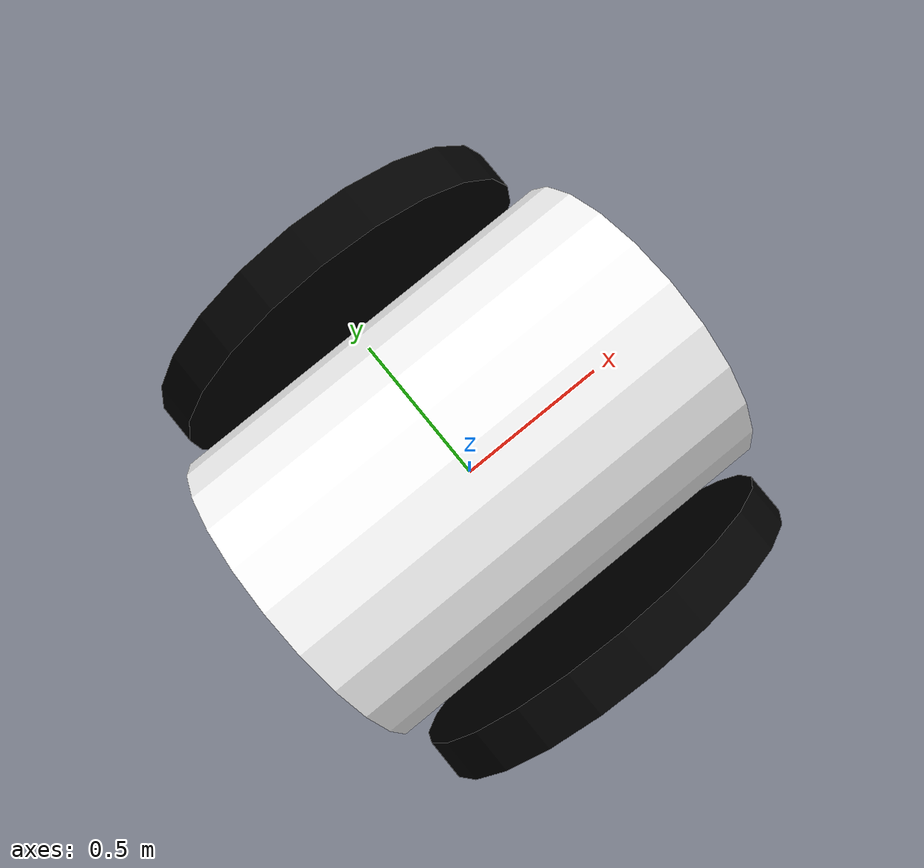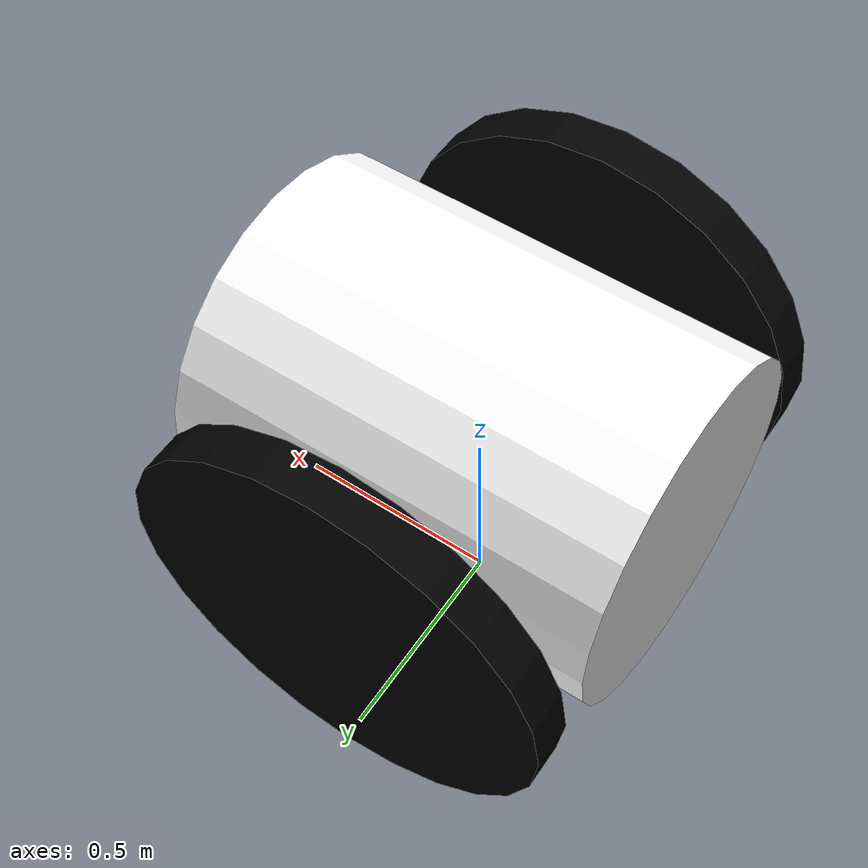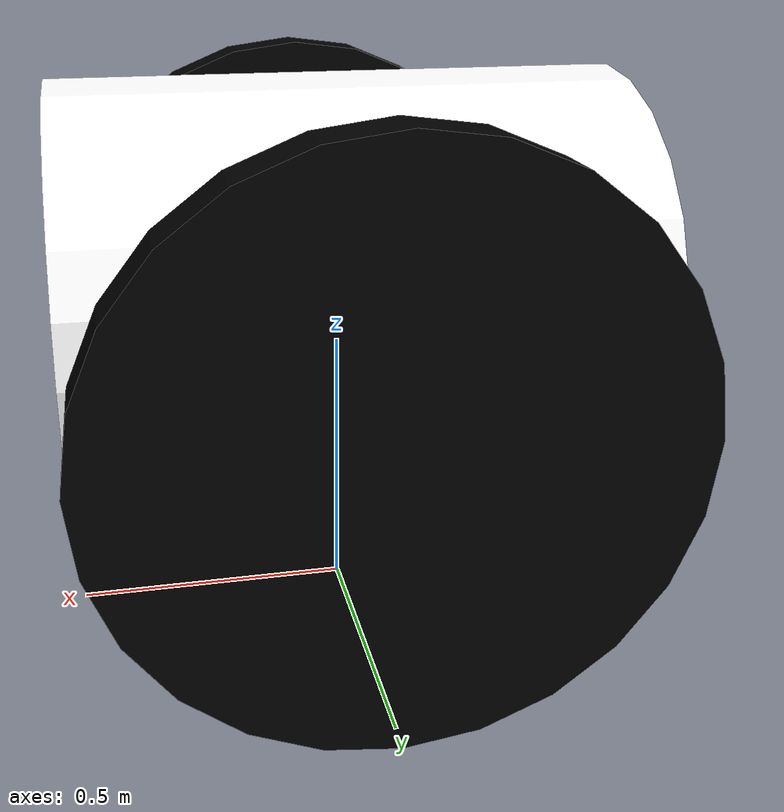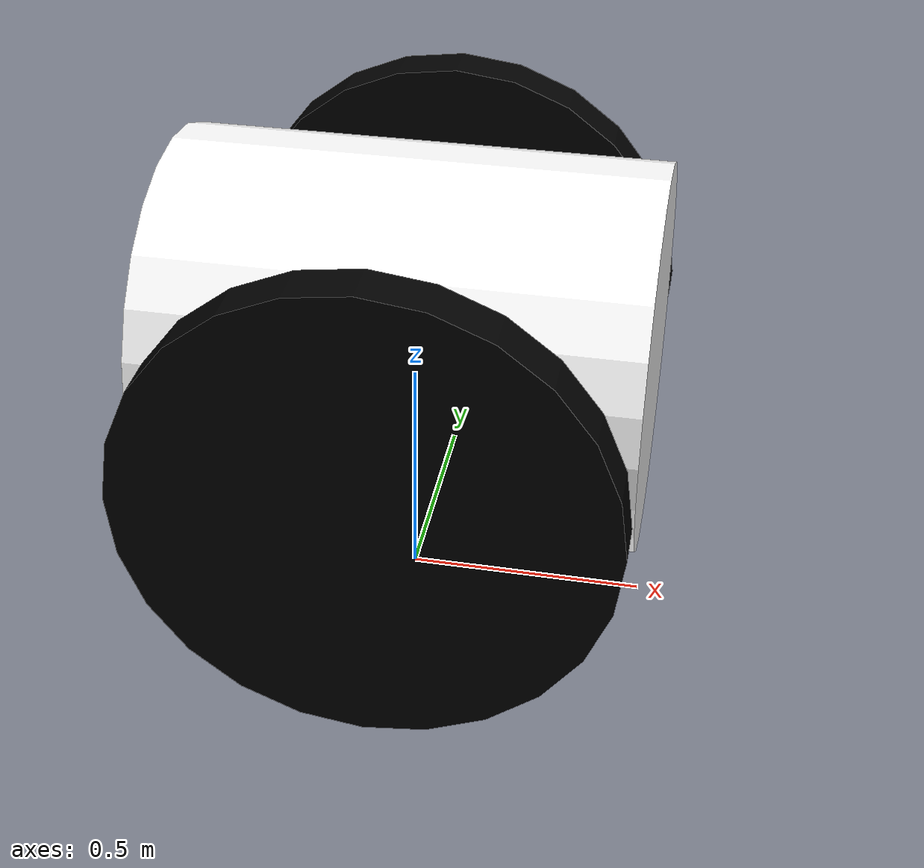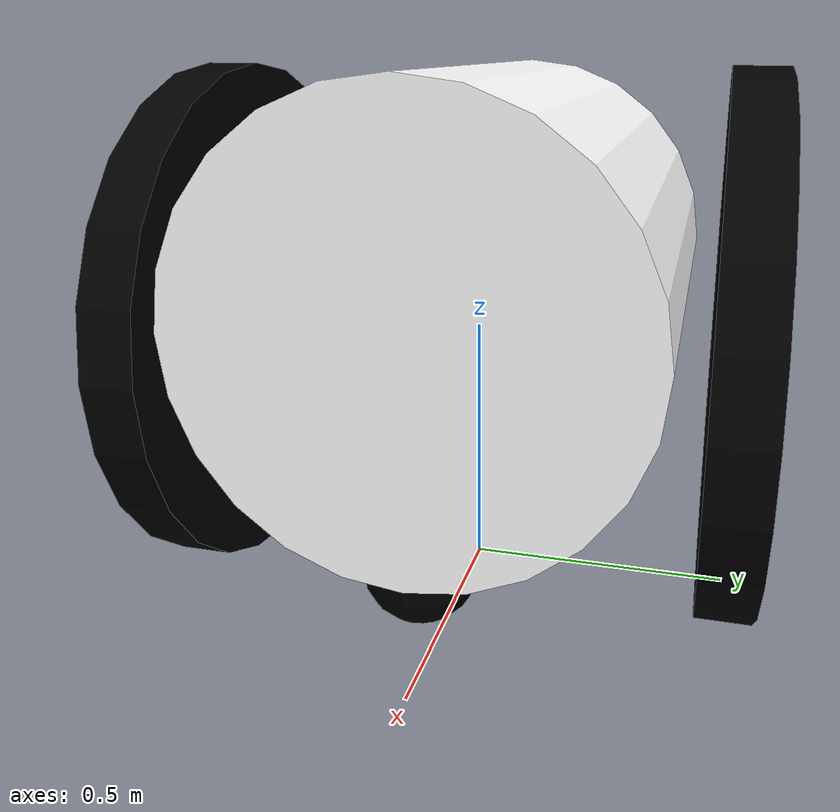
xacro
<?xml version="1.0"?>
<robot name="my_f" xmlns:xacro="http://www.ros.org/wiki/xacro">
  <xacro:property name="width" value="0.4" />       <xacro:property name="length" value="1.0" />      <xacro:property name="wheel_length" value="0.1" />      <xacro:property name="body_high" value="0.1" />  <xacro:property name="wheelrad" value="${body_high+width}" />  <material name="blue">
    <color rgba="0 0 0.8 1"/>
  </material>

  <material name="white">
    <color rgba="1 1 1 1"/>
  </material>

  <material name="black">
    <color rgba="0 0 0 1"/>
  </material>

  <xacro:macro name="cylinder_inertial_z" params="mass r l">
    <inertial>
      <mass value="${mass}"/>
      <inertia ixx="${mass*(3*r*r + l*l)/12}" ixy="0" ixz="0"
               iyy="${mass*(3*r*r + l*l)/12}" iyz="0"
               izz="${mass*r*r/2}"/>
    </inertial>
  </xacro:macro>

  <xacro:macro name="cylinder_inertial_x" params="mass r l">
    <inertial>
      <mass value="${mass}"/>
      <inertia ixx="${mass*r*r/2}" ixy="0" ixz="0"
               iyy="${mass*(3*r*r + l*l)/12}" iyz="0"
               izz="${mass*(3*r*r + l*l)/12}"/>
    </inertial>
  </xacro:macro>

  <xacro:macro name="wheel" params="prefix reflect">
    <joint name="${prefix}_wheel_joint" type="continuous">
      <axis xyz="0 0 ${reflect*1}"/> <parent link="base_link"/>  <child link="${prefix}_wheel"/> <origin xyz="0 ${reflect*(body_high+width)} 0" rpy="${reflect*1.570796} 0 0"/>
    </joint>
  </xacro:macro>

  <link name="base_footprint"/>

  <joint name="base_footprint_to_base_link_joint" type="fixed">
    <parent link="base_footprint"/>
    <child link="base_link"/>
    <origin xyz="0 0 ${wheelrad}" rpy="0 0 0"/>
  </joint>

  <link name="base_link">
    <visual>
      <geometry>
        <cylinder length="${length}" radius="${width}"/>
      </geometry>
      <origin xyz="0 0 ${body_high}" rpy="0 1.570796 0"/>
      <material name="white"/>
    </visual>
    <collision>
      <geometry>
        <cylinder length="${length}" radius="${width}"/>
      </geometry>
      <origin xyz="0 0 ${body_high}" rpy="0 1.570796 0"/>
    </collision>
    <xacro:cylinder_inertial_z mass="10" r="${width}" l="${length}"/>
  </link>

  <link name="right_wheel">
    <visual>
      <geometry>
        <cylinder length="${wheel_length}" radius="${wheelrad}"/>
      </geometry>
      <origin xyz="0 0 0" rpy="0 0 0"/>
      <material name="black"/>
    </visual>
    <collision>
      <geometry>
        <cylinder length="${wheel_length}" radius="${wheelrad}"/>
      </geometry>
      <origin xyz="0 0 0" rpy="0 0 0"/>
    </collision>
    <xacro:cylinder_inertial_x mass="1" r="${wheelrad}" l="${wheel_length}"/>
  </link>

  <link name="left_wheel">
    <visual>
      <geometry>
        <cylinder length="${wheel_length}" radius="${wheelrad}"/>
      </geometry>
      <origin xyz="0 0 0" rpy="0 0 0"/>
      <material name="black"/>
    </visual>
    <collision>
      <geometry>
        <cylinder length="${wheel_length}" radius="${wheelrad}"/>
      </geometry>
      <origin xyz="0 0 0" rpy="0 0 0"/>
    </collision>
    <xacro:cylinder_inertial_x mass="1" r="${wheelrad}" l="${wheel_length}"/>
  </link>

  <xacro:wheel prefix="right" reflect="1"/>
  <xacro:wheel prefix="left" reflect="-1"/>

  <link name="caster_wheel">
    <visual>
      <geometry>
        <sphere radius="0.1"/>
      </geometry>
      <material name="black"/>
    </visual>
    <collision>
      <geometry>
        <sphere radius="0.1"/>
      </geometry>
    </collision>
    <inertial>
      <mass value="0.5"/>
      <inertia ixx="0.002" ixy="0" ixz="0" iyy="0.002" iyz="0" izz="0.002"/>
    </inertial>
  </link>

  <joint name="caster_wheel_joint" type="fixed">
    <parent link="base_link"/>
    <child link="caster_wheel"/>
    <origin xyz="0.4 0 ${-width + body_high}" rpy="0 0 0"/>
  </joint>

  <gazebo reference="caster_wheel">
    <mu1>0.001</mu1>
    <mu2>0.001</mu2>
  </gazebo>
  <gazebo>
    <plugin name="differential_drive_controller" filename="libgazebo_ros_diff_drive.so">
      <update_rate>30</update_rate>

      <left_joint>left_wheel_joint</left_joint>
      <right_joint>right_wheel_joint</right_joint>

      <wheel_separation>${(body_high + width) * 2}</wheel_separation>
      <wheel_diameter>${wheelrad * 2}</wheel_diameter>
      <max_wheel_torque>20</max_wheel_torque>
      <max_wheel_acceleration>1.0</max_wheel_acceleration>

      <command_topic>cmd_vel</command_topic>
      <odometry_topic>odom</odometry_topic>
      <odometry_frame>odom</odometry_frame>
      <robot_base_frame>base_footprint</robot_base_frame>

      <publish_odom>true</publish_odom>
      <publish_odom_tf>true</publish_odom_tf>
      <publish_wheel_tf>true</publish_wheel_tf>
    </plugin>
  </gazebo>

</robot>
